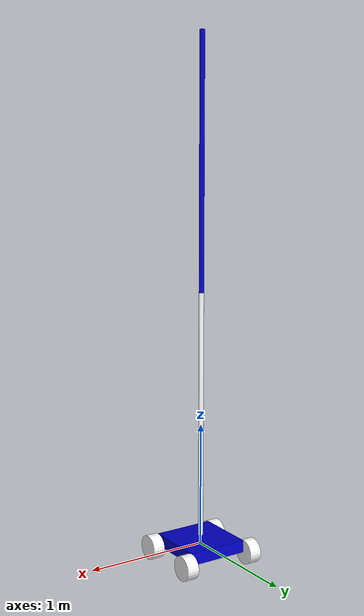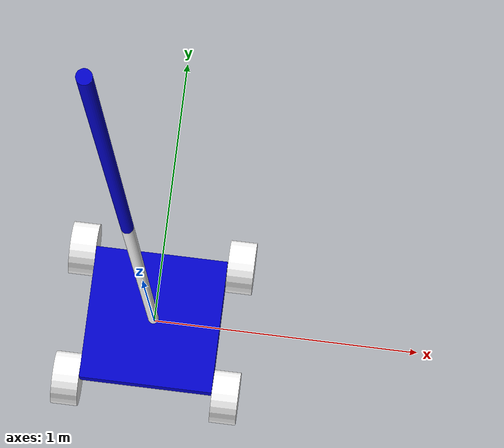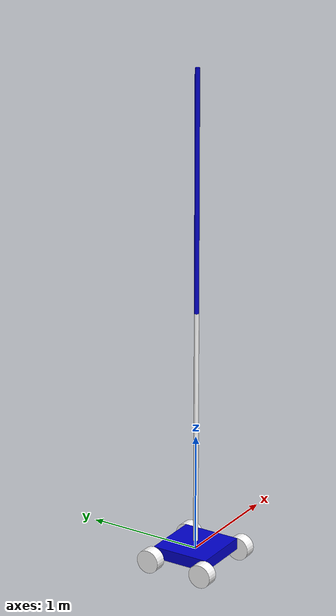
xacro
<?xml version="1.0"?>
<robot xmlns:xacro="http://www.ros.org/wiki/xacro" name="pendulum_cart">

    <!-- #region MATERIAL-->
    <material name="blue">
        <color rgba="0 0 0.8 1"/>
    </material>

    <material name="white">
        <color rgba="1 1 1 1"/>
    </material>
    <!-- #endregion -->

    <!-- #region XACRO_MACROS -->

    <!-- #region CONSTANTS -->

    <xacro:property name="boxheight" value="0.1" />
    <xacro:property name="pendulumlength" value="2.0" />
    <xacro:property name="pendulummass" value="1" />
    <xacro:property name="pitchlimit" value="0" />
    <xacro:property name="pendulumdamping" value="0.00" />
    <xacro:property name="pendulumfriction" value="0.00" />
    <!-- #endregion -->

    <!-- #region MAKE_BOX -->
    <xacro:macro name="make_box" params="length width height mass material originxyz originrpy">
        <visual>
            <origin rpy="${originrpy}" xyz="${originxyz}"/>
            <geometry>
                <box size="${length} ${width} ${height}"/>
            </geometry>
            <material name="${material}"/>
        </visual>
        <collision>
            <origin rpy="${originrpy}" xyz="${originxyz}"/>
            <geometry>
                <box size="${length} ${width} ${height}"/>
            </geometry>
        </collision>
        <inertial>
            <mass value="${mass}"/>
            <inertia
                ixx="${1/12 * mass * (height*height + length*length)}"
                iyy="${1/12 * mass * (width*width + length*length)}"
                izz="${1/12 * mass * (width*width + height*height)}"
                ixy="0"
                ixz="0"
                iyz="0"
            />
        </inertial>
    </xacro:macro>
    <!-- #endregion -->

    <!-- #region MAKE_CYLINDER -->
    <xacro:macro name="make_cylinder" params="length radius mass material originxyz originrpy">
        <visual>
            <origin rpy="${originrpy}" xyz="${originxyz}"/>
            <geometry>
                <cylinder length="${length}" radius="${radius}"/>
            </geometry>
            <material name="${material}"/>
        </visual>
        <collision>
            <origin xyz="${originxyz}" rpy="${originrpy}"/>
            <geometry>
                <cylinder length="${length}" radius="${length}"/>
            </geometry>
        </collision>
        <inertial>
            <mass value="${mass}"/>
            <inertia
                ixx="${1/12 * mass * (3*radius*radius + length*length)}"
                iyy="${1/12 * mass * (3*radius*radius + length*length)}"
                izz="${1/2 * mass * radius*radius}"
                ixy="0"
                ixz="0"
                iyz="0"
            />
        </inertial>
    </xacro:macro>
    <!-- #endregion -->

    <!-- #endregion -->

    <!-- ROBOT BEGINS HERE -->
    <!-- ROBOT BEGINS HERE -->
    <!-- ROBOT BEGINS HERE -->

    <!-- #region BASE -->
    <link name="base_link">
        <xacro:make_box length="0.5" width="0.5" height="${boxheight}" mass="1000" material="blue" originxyz="0 0 0" originrpy="0 0 0"/>
    </link>
    <!-- #endregion -->

    <!-- #region FIRST_PENDULUM -->
    <link name="first_pendulum">
        <xacro:make_cylinder length="${pendulumlength}" radius="0.02" mass="${pendulummass}" material="white" originxyz="0 0 ${pendulumlength/2}" originrpy="0 0 0"/>
    </link>

    <link name="first_pendulum_roll">
        <inertial>
            <mass value="0.01"/>
            <inertia
                ixx="0.01"
                iyy="0.01"
                izz="0.01"
                ixy="0"
                ixz="0"
                iyz="0"
            />
        </inertial>
    </link>

    <link name="first_pendulum_pitch">
        <inertial>
            <mass value="0.01"/>
            <inertia
                ixx="0.01"
                iyy="0.01"
                izz="0.01"
                ixy="0"
                ixz="0"
                iyz="0"
            />
        </inertial>
    </link>

    <joint name="base_to_first_pendulum_roll" type="revolute">
        <parent link="base_link"/>
        <child link="first_pendulum_roll"/>
        <!-- joint of child is xyz away from parent -->
        <origin xyz="0 0 ${boxheight/2 + 0.02}"/>
        <axis xyz="1 0 0"/>
        <limit effort="1000" lower="-1000" upper="1000" velocity="100"/>
        <dynamics damping="${pendulumdamping}" friction="${pendulumfriction}"/>
    </joint>

    <joint name="base_to_first_pendulum_pitch" type="revolute">
        <parent link="first_pendulum_roll"/>
        <child link="first_pendulum_pitch"/>
        <!-- joint of child is xyz away from parent -->
        <origin xyz="0 0 0"/>
        <axis xyz="0 1 0"/>
        <limit effort="1000" lower="${-pitchlimit}" upper="${pitchlimit}" velocity="100"/>
        <dynamics damping="${pendulumdamping}" friction="${pendulumfriction}"/>
    </joint>

    <joint name="base_to_first_pendulum" type="fixed">
        <parent link="first_pendulum_pitch"/>
        <child link="first_pendulum"/>
        <!-- joint of child is xyz away from parent -->
        <origin xyz="0 0 0"/>
    </joint>
    <!-- #endregion -->

    <!-- #region SECOND_PENDULUM -->
    <link name="second_pendulum">
        <xacro:make_cylinder length="${pendulumlength}" radius="0.02" mass="${pendulummass}" material="blue" originxyz="0 0 ${pendulumlength/2}" originrpy="0 0 0"/>
    </link>

    <link name="second_pendulum_roll">
        <inertial>
            <mass value="0.01"/>
            <inertia
                ixx="0.01"
                iyy="0.01"
                izz="0.01"
                ixy="0"
                ixz="0"
                iyz="0"
            />
        </inertial>
    </link>

    <link name="second_pendulum_pitch">
        <inertial>
            <mass value="0.01"/>
            <inertia
                ixx="0.01"
                iyy="0.01"
                izz="0.01"
                ixy="0"
                ixz="0"
                iyz="0"
            />
        </inertial>
    </link>

    <joint name="first_pendulum_to_second_pendulum_roll" type="revolute">
        <parent link="first_pendulum"/>
        <child link="second_pendulum_roll"/>
        <!-- joint of child is xyz away from parent -->
        <origin xyz="0 0 ${pendulumlength}"/>
        <axis xyz="1 0 0"/>
        <limit effort="1000" lower="-1000" upper="1000" velocity="1"/>
        <dynamics damping="${pendulumdamping}" friction="${pendulumfriction}"/>
    </joint>

    <joint name="first_pendulum_to_second_pendulum_pitch" type="revolute">
        <parent link="second_pendulum_roll"/>
        <child link="second_pendulum_pitch"/>
        <!-- joint of child is xyz away from parent -->
        <origin xyz="0 0 0"/>
        <axis xyz="0 1 0"/>
        <limit effort="1000" lower="${-pitchlimit}" upper="${pitchlimit}" velocity="1"/>
        <dynamics damping="${pendulumdamping}" friction="${pendulumfriction}"/>
    </joint>

    <joint name="first_pendulum_to_second_pendulum" type="fixed">
        <parent link="second_pendulum_pitch"/>
        <child link="second_pendulum"/>
        <!-- joint of child is xyz away from parent -->
        <origin xyz="0 0 0"/>
    </joint>
    <!-- #endregion -->

    <!-- #region WHEELS -->
    <!-- #region FRONT_LEFT_WHEEL -->
    <link name="front_left_wheel">
        <xacro:make_cylinder length="0.1" radius="0.1" mass="0.3" material="white" originxyz="0.051 0 0" originrpy="0 1.570796327 0"/>
    </link>

    <joint name="base_to_front_left_wheel" type="continuous">
        <parent link="base_link"/>
        <child link="front_left_wheel"/>
        <!-- joint of child is xyz away from parent -->
        <origin xyz="0.25 0.25 ${-boxheight/2}"/>
        <axis xyz="1 0 0"/>
    </joint>
    <!-- #endregion -->

    <!-- #region FRONT_RIGHT_WHEEL -->
    <link name="front_right_wheel">
        <xacro:make_cylinder length="0.1" radius="0.1" mass="0.3" material="white" originxyz="0.051 0 0" originrpy="0 -1.570796327 0"/>
    </link>

    <joint name="base_to_front_right_wheel" type="continuous">
        <parent link="base_link"/>
        <child link="front_right_wheel"/>
        <!-- joint of child is xyz away from parent -->
        <origin xyz="0.25 -0.25 ${-boxheight/2}"/>
        <axis xyz="1 0 0"/>
    </joint>
    <!-- #endregion -->

    <!-- #region BACK_LEFT_WHEEL -->
    <link name="back_left_wheel">
        <xacro:make_cylinder length="0.1" radius="0.1" mass="0.3" material="white" originxyz="-0.051 0 0" originrpy="0 1.570796327 0"/>
    </link>

    <joint name="base_to_back_left_wheel" type="continuous">
        <parent link="base_link"/>
        <child link="back_left_wheel"/>
        <!-- joint of child is xyz away from parent -->
        <origin xyz="-0.25 0.25 ${-boxheight/2}"/>
        <axis xyz="1 0 0"/>
    </joint>
    <!-- #endregion -->

    <!-- #region BACK_RIGHT_WHEEL -->
    <link name="back_right_wheel">
        <xacro:make_cylinder length="0.1" radius="0.1" mass="0.3" material="white" originxyz="-0.051 0 0" originrpy="0 1.570796327 0"/>
    </link>

    <joint name="base_to_back_right_wheel" type="continuous">
        <parent link="base_link"/>
        <child link="back_right_wheel"/>
        <!-- joint of child is xyz away from parent -->
        <origin xyz="-0.25 -0.25 ${-boxheight/2}"/>
        <axis xyz="1 0 0"/>
    </joint>
    <!-- #endregion -->
    <!-- #endregion -->

</robot>
